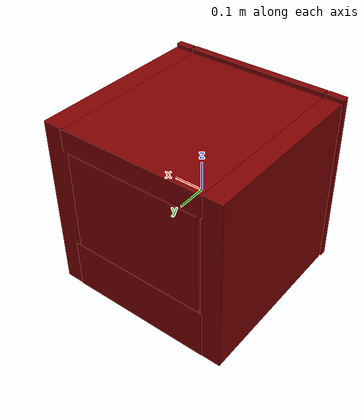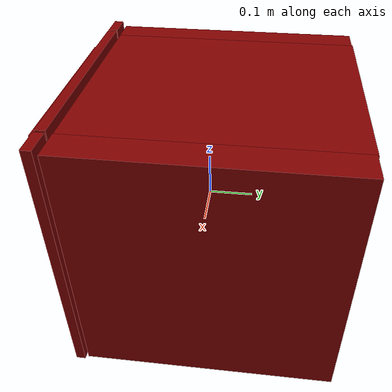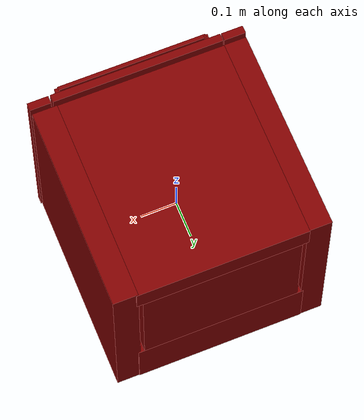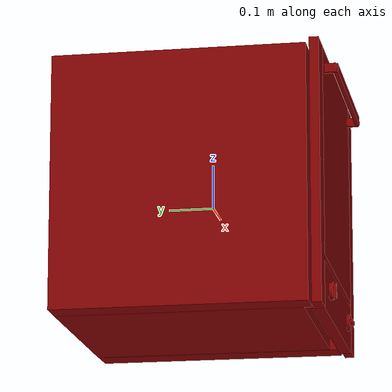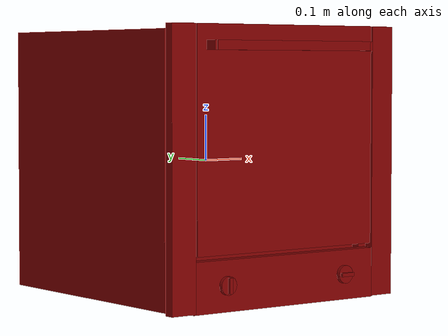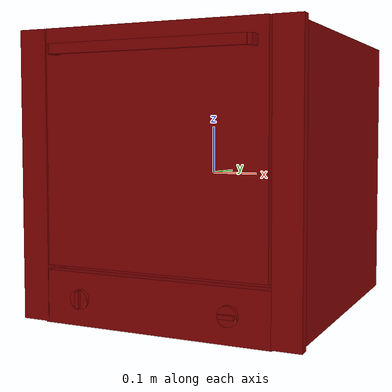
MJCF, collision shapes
<mujoco model="model">
  <compiler angle="radian"/>
  <asset>
    <mesh file="visuals/Body001.obj" name="Body001_vis"/>
    <mesh file="visuals/Door001.obj" name="Door001_vis"/>
    <mesh file="visuals/Door001_Clear.obj" name="Door001_Clear_vis"/>
    <mesh file="visuals/Knob001.obj" name="Knob001_vis"/>
    <mesh file="visuals/Knob002.obj" name="Knob002_vis"/>
    <mesh file="visuals/Shelf001.obj" name="Shelf001_vis"/>
    <mesh file="visuals/Shelf002.obj" name="Shelf002_vis"/>
    <texture file="visuals/T_BC001.png" name="Body001_material" type="2d"/>
    <material name="Body001_material" rgba="1 1 1 1.0" texture="Body001_material" shininess="0.4472135901451111" specular="0.3103448502657381"/>
    <texture file="visuals/T_BC001.png" name="Door001_material" type="2d"/>
    <material name="Door001_material" rgba="1 1 1 1.0" texture="Door001_material" shininess="0.4472135901451111" specular="0.3103448502657381"/>
    <material name="Door001_Clear_material" rgba="0.06299802660942078 0.06299802660942078 0.06299802660942078 0.800000011920929" shininess="0.4472135901451111" specular="0.3103448502657381"/>
    <texture file="visuals/T_BC001.png" name="Knob001_material" type="2d"/>
    <material name="Knob001_material" rgba="1 1 1 1.0" texture="Knob001_material" shininess="0.4472135901451111" specular="0.3103448502657381"/>
    <texture file="visuals/T_BC001.png" name="Knob002_material" type="2d"/>
    <material name="Knob002_material" rgba="1 1 1 1.0" texture="Knob002_material" shininess="0.4472135901451111" specular="0.3103448502657381"/>
    <texture file="visuals/T_BC001.png" name="Shelf001_material" type="2d"/>
    <material name="Shelf001_material" rgba="1 1 1 1.0" texture="Shelf001_material" shininess="0.4472135901451111" specular="0.3103448502657381"/>
    <texture file="visuals/T_BC001.png" name="Shelf002_material" type="2d"/>
    <material name="Shelf002_material" rgba="1 1 1 1.0" texture="Shelf002_material" shininess="0.4472135901451111" specular="0.3103448502657381"/>
  </asset>
  <default>
    <default class="visual">
      <geom conaffinity="0" contype="0" group="1" type="mesh"/>
    </default>
    <default class="collision">
      <geom group="0" rgba="0.5 0 0 0.5"/>
    </default>
    <default class="spawn">
      <geom group="0" rgba="1 1 1 0.5" contype="0" conaffinity="0"/>
      <site group="0" rgba="1 1 1 0.5"/>
    </default>
    <default class="region">
      <geom group="1" conaffinity="0" contype="0" rgba="0 1 0 0"/>
    </default>
  </default>
  <worldbody>
    <body>
      <body name="object">
        <geom mesh="Body001_vis" type="mesh" solimp="0.998 0.998 0.001" solref="0.001 1" density="100" friction="0.95 0.3 0.1" class="visual" material="Body001_material"/>
        <geom class="collision" type="box" pos="-0.263638 0.028855 -0.001677" size="0.033552136272192 0.28196147084236145 0.28643712401390076" quat="1.0 0.0 0.0 0.0"/>
        <geom class="collision" type="box" pos="0.262006 0.028855 -0.000967" size="0.03434443101286888 0.28196147084236145 0.28642332553863525" quat="1.0 0.0 0.0 0.0"/>
        <geom class="collision" type="box" pos="-0.000858 0.030395 0.250083" size="0.23474690318107605 0.28244489431381226 0.03526328131556511" quat="1.0 0.0 0.0 0.0"/>
        <geom class="collision" type="box" pos="-0.000858 0.039631 -0.201700" size="0.23474691808223724 0.2732081413269043 0.08487880975008011" quat="1.0 0.0 0.0 0.0"/>
        <geom class="collision" type="box" pos="-0.000858 0.255147 -0.000892" size="0.21802020072937012 0.057141680270433426 0.21207647025585175" quat="1.0 0.0 0.0 0.0"/>
        <geom class="collision" type="box" pos="-0.269303 -0.271364 0.001335" size="0.029970986768603325 0.010580205358564854 0.29410824179649353" quat="1.0 0.0 0.0 0.0"/>
        <geom class="collision" type="box" pos="0.270116 -0.271364 0.001129" size="0.029157599434256554 0.010580206289887428 0.2939023971557617" quat="1.0 0.0 0.0 0.0"/>
        <geom class="collision" type="box" pos="-0.000858 -0.268392 -0.240663" size="0.24377313256263733 0.012974348850548267 0.05398079380393028" quat="1.0 0.0 0.0 0.0"/>
        <body name="Door001">
          <joint axis="1.0 0.0 0.0" pos="-0.000628 -0.280965 -0.177008" limited="true" name="Door001_joint" range="0.0 1.5707963267948966" type="hinge" damping="1" frictionloss="1" armature=".01" stiffness="0.05"/>
          <geom mesh="Door001_vis" type="mesh" solimp="0.998 0.998 0.001" solref="0.001 1" density="100" friction="0.95 0.3 0.1" class="visual" material="Door001_material"/>
          <geom class="collision" type="box" pos="-0.000218 -0.271764 0.059564" size="0.23592068254947662 0.010454652830958366 0.23583979904651642" quat="1.0 0.0 0.0 0.0"/>
          <geom class="collision" type="box" pos="-0.206745 -0.294440 0.252052" size="0.005454094149172306 0.015250042080879211 0.010039455257356167" quat="1.0 0.0 0.0 0.0"/>
          <geom class="collision" type="box" pos="0.209725 -0.294440 0.252052" size="0.005454094614833593 0.015250043012201786 0.010039456188678741" quat="1.0 0.0 0.0 0.0"/>
          <geom class="collision" type="box" pos="-0.000858 -0.307817 0.252052" size="0.20655550062656403 0.005022373981773853 0.010039458982646465" quat="1.0 0.0 0.0 0.0"/>
          <body name="Door001_Clear">
            <geom mesh="Door001_Clear_vis" type="mesh" solimp="0.998 0.998 0.001" solref="0.001 1" density="100" friction="0.95 0.3 0.1" class="visual" material="Door001_Clear_material"/>
            <geom class="collision" type="box" pos="0.001596 -0.276500 0.059564" size="0.20330582559108734 0.002345638582482934 0.1323758214712143" quat="1.0 0.0 0.0 0.0"/>
          </body>
        </body>
        <body name="Knob001">
          <joint axis="0.0 1.0 0.0" pos="-0.160503 -0.289303 -0.239143" limited="true" name="Knob001_joint" range="0.0 4.71238898038469" type="hinge" damping="1" frictionloss="1" armature=".01" stiffness="0.01" springref="-1.5"/>
          <geom mesh="Knob001_vis" type="mesh" solimp="0.998 0.998 0.001" solref="0.001 1" density="100" friction="0.95 0.3 0.1" class="visual" material="Knob001_material"/>
          <geom class="collision" type="cylinder" pos="-0.160483 -0.286475 -0.239241" size="0.019565556198358536 0.00419428339228034" quat="0.7071067094802856 0.7071068286895752 0.0 0.0"/>
          <geom class="collision" type="box" pos="-0.160465 -0.293969 -0.239082" size="0.003911549225449562 0.003584049642086029 0.016494594514369965" quat="1.0 0.0 0.0 0.0"/>
        </body>
        <body name="Knob002">
          <joint axis="0.0 1.0 0.0" pos="0.159150 -0.289303 -0.239143" limited="true" name="Knob002_joint" range="0.0 5.358160803622591" type="hinge" damping="1" frictionloss="1" armature=".01" stiffness="0.01" springref="-1.5"/>
          <geom mesh="Knob002_vis" type="mesh" solimp="0.998 0.998 0.001" solref="0.001 1" density="100" friction="0.95 0.3 0.1" class="visual" material="Knob002_material"/>
          <geom class="collision" type="box" pos="0.159088 -0.293969 -0.239188" size="0.003911549225449562 0.003584049642086029 0.016494594514369965" quat="0.7071068286895752 -2.7605171482036894e-08 0.7071067690849304 2.7605167929323216e-08"/>
          <geom class="collision" type="cylinder" pos="0.159060 -0.286475 -0.239241" size="0.019565556198358536 0.00419428339228034" quat="0.7071067094802856 0.7071068286895752 0.0 0.0"/>
        </body>
        <body name="Shelf001">
          <joint axis="0.0 -1.0 0.0" pos="0.000866 -0.045262 0.004281" limited="true" name="Shelf001_joint" range="0.0 0.3" type="slide" damping="1" frictionloss="1" armature=".01" stiffness="0.05"/>
          <geom mesh="Shelf001_vis" type="mesh" solimp="0.998 0.998 0.001" solref="0.001 1" density="100" friction="0.95 0.3 0.1" class="visual" material="Shelf001_material"/>
          <geom class="collision" type="box" pos="-0.000616 -0.045234 0.004756" size="0.22240999341011047 0.14247678220272064 0.00313493050634861" quat="1.0 0.0 0.0 0.0"/>
        </body>
        <body name="Shelf002">
          <joint axis="0.0 -1.0 0.0" pos="0.000866 -0.045262 0.123366" limited="true" name="Shelf002_joint" range="0.0 0.3" type="slide" damping="1" frictionloss="1" armature=".01" stiffness="0.05"/>
          <geom mesh="Shelf002_vis" type="mesh" solimp="0.998 0.998 0.001" solref="0.001 1" density="100" friction="0.95 0.3 0.1" class="visual" material="Shelf002_material"/>
          <geom class="collision" type="box" pos="-0.000616 -0.045234 0.125212" size="0.22240999341011047 0.14247678220272064 0.0031349307391792536" quat="1.0 0.0 0.0 0.0"/>
        </body>
        <geom class="region" name="reg_main" type="box" pos="-0.0006269999999999887 0.014383499999999994 -0.00044250000000001233" size="0.2975 0.2960005 0.2950005"/>
        <geom class="region" name="reg_int" type="box" pos="0.000727499999999992 -0.02299899999999999 0.04626000000000001" size="0.2314185 0.234458 0.167647"/>
      </body>
    </body>
  </worldbody>
  <actuator>
    <motor name="Door001_joint_actuator" joint="Door001_joint" gear="50"/>
    <motor name="Knob001_joint_actuator" joint="Knob001_joint" gear="50"/>
    <motor name="Knob002_joint_actuator" joint="Knob002_joint" gear="50"/>
    <motor name="Shelf001_joint_actuator" joint="Shelf001_joint" gear="50"/>
    <motor name="Shelf002_joint_actuator" joint="Shelf002_joint" gear="50"/>
  </actuator>
</mujoco>
